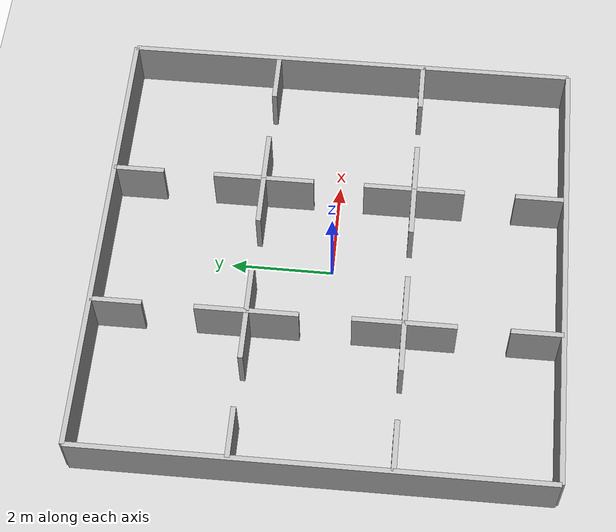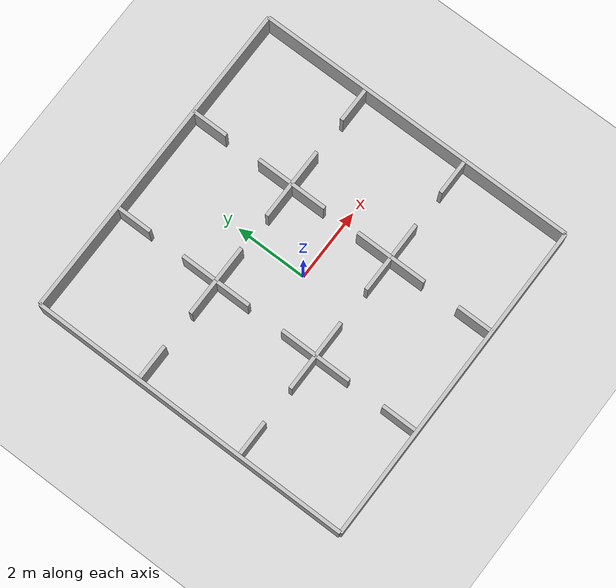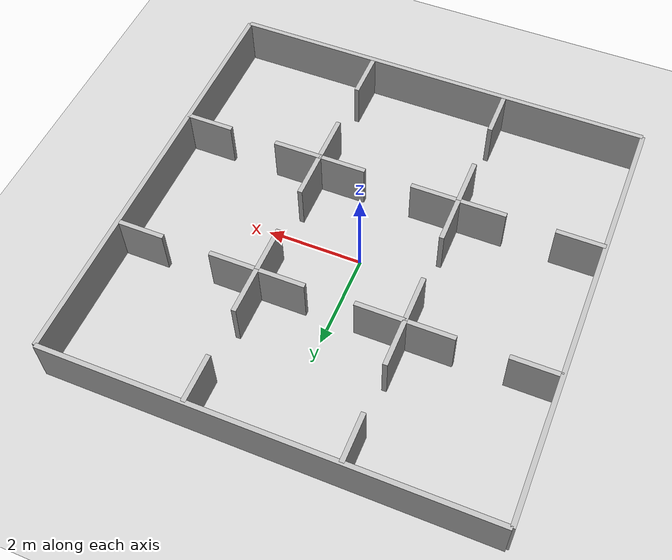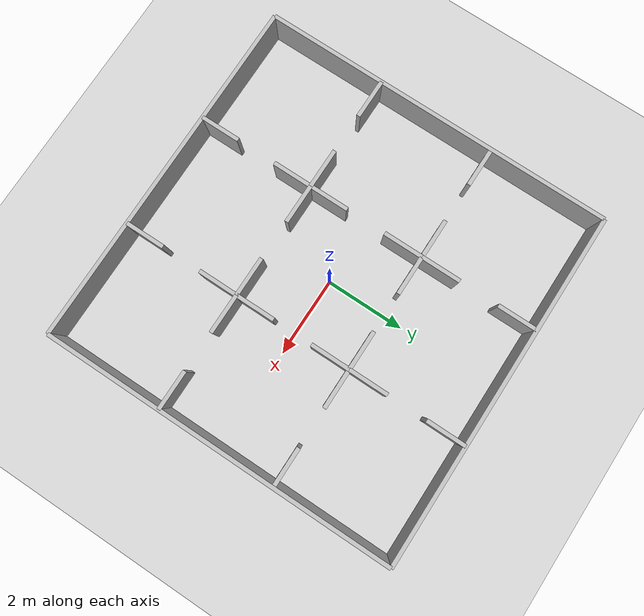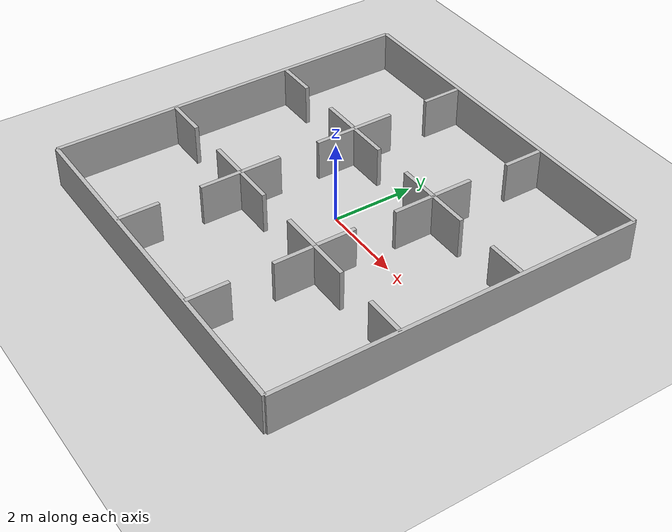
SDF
<?xml version="1.0" ?>
<sdf version="1.6">
  <world name="nine_rooms_world">

    <include><uri>model://sun</uri></include>
    <include><uri>model://ground_plane</uri></include>

    <model name="ext_north">
      <static>true</static><pose>0.0 4.5 0.5 0 0 0</pose>
      <link name="link">
        <collision name="col"><geometry><box><size>9.0 0.1 1.0</size></box></geometry></collision>
        <visual name="vis"><geometry><box><size>9.0 0.1 1.0</size></box></geometry></visual>
      </link>
    </model>
    <model name="ext_south">
      <static>true</static><pose>0.0 -4.5 0.5 0 0 0</pose>
      <link name="link">
        <collision name="col"><geometry><box><size>9.0 0.1 1.0</size></box></geometry></collision>
        <visual name="vis"><geometry><box><size>9.0 0.1 1.0</size></box></geometry></visual>
      </link>
    </model>
    <model name="ext_east">
      <static>true</static><pose>4.5 0.0 0.5 0 0 0</pose>
      <link name="link">
        <collision name="col"><geometry><box><size>0.1 9.0 1.0</size></box></geometry></collision>
        <visual name="vis"><geometry><box><size>0.1 9.0 1.0</size></box></geometry></visual>
      </link>
    </model>
    <model name="ext_west">
      <static>true</static><pose>-4.5 0.0 0.5 0 0 0</pose>
      <link name="link">
        <collision name="col"><geometry><box><size>0.1 9.0 1.0</size></box></geometry></collision>
        <visual name="vis"><geometry><box><size>0.1 9.0 1.0</size></box></geometry></visual>
      </link>
    </model>
    <model name="h_div_1_0_left">
      <static>true</static><pose>-4.0 -1.5 0.5 0 0 0</pose>
      <link name="link">
        <collision name="col"><geometry><box><size>1.0 0.1 1.0</size></box></geometry></collision>
        <visual name="vis"><geometry><box><size>1.0 0.1 1.0</size></box></geometry></visual>
      </link>
    </model>
    <model name="h_div_1_0_right">
      <static>true</static><pose>-2.0 -1.5 0.5 0 0 0</pose>
      <link name="link">
        <collision name="col"><geometry><box><size>1.0 0.1 1.0</size></box></geometry></collision>
        <visual name="vis"><geometry><box><size>1.0 0.1 1.0</size></box></geometry></visual>
      </link>
    </model>
    <model name="h_div_1_1_left">
      <static>true</static><pose>-1.0 -1.5 0.5 0 0 0</pose>
      <link name="link">
        <collision name="col"><geometry><box><size>1.0 0.1 1.0</size></box></geometry></collision>
        <visual name="vis"><geometry><box><size>1.0 0.1 1.0</size></box></geometry></visual>
      </link>
    </model>
    <model name="h_div_1_1_right">
      <static>true</static><pose>1.0 -1.5 0.5 0 0 0</pose>
      <link name="link">
        <collision name="col"><geometry><box><size>1.0 0.1 1.0</size></box></geometry></collision>
        <visual name="vis"><geometry><box><size>1.0 0.1 1.0</size></box></geometry></visual>
      </link>
    </model>
    <model name="h_div_1_2_left">
      <static>true</static><pose>2.0 -1.5 0.5 0 0 0</pose>
      <link name="link">
        <collision name="col"><geometry><box><size>1.0 0.1 1.0</size></box></geometry></collision>
        <visual name="vis"><geometry><box><size>1.0 0.1 1.0</size></box></geometry></visual>
      </link>
    </model>
    <model name="h_div_1_2_right">
      <static>true</static><pose>4.0 -1.5 0.5 0 0 0</pose>
      <link name="link">
        <collision name="col"><geometry><box><size>1.0 0.1 1.0</size></box></geometry></collision>
        <visual name="vis"><geometry><box><size>1.0 0.1 1.0</size></box></geometry></visual>
      </link>
    </model>
    <model name="h_div_2_0_left">
      <static>true</static><pose>-4.0 1.5 0.5 0 0 0</pose>
      <link name="link">
        <collision name="col"><geometry><box><size>1.0 0.1 1.0</size></box></geometry></collision>
        <visual name="vis"><geometry><box><size>1.0 0.1 1.0</size></box></geometry></visual>
      </link>
    </model>
    <model name="h_div_2_0_right">
      <static>true</static><pose>-2.0 1.5 0.5 0 0 0</pose>
      <link name="link">
        <collision name="col"><geometry><box><size>1.0 0.1 1.0</size></box></geometry></collision>
        <visual name="vis"><geometry><box><size>1.0 0.1 1.0</size></box></geometry></visual>
      </link>
    </model>
    <model name="h_div_2_1_left">
      <static>true</static><pose>-1.0 1.5 0.5 0 0 0</pose>
      <link name="link">
        <collision name="col"><geometry><box><size>1.0 0.1 1.0</size></box></geometry></collision>
        <visual name="vis"><geometry><box><size>1.0 0.1 1.0</size></box></geometry></visual>
      </link>
    </model>
    <model name="h_div_2_1_right">
      <static>true</static><pose>1.0 1.5 0.5 0 0 0</pose>
      <link name="link">
        <collision name="col"><geometry><box><size>1.0 0.1 1.0</size></box></geometry></collision>
        <visual name="vis"><geometry><box><size>1.0 0.1 1.0</size></box></geometry></visual>
      </link>
    </model>
    <model name="h_div_2_2_left">
      <static>true</static><pose>2.0 1.5 0.5 0 0 0</pose>
      <link name="link">
        <collision name="col"><geometry><box><size>1.0 0.1 1.0</size></box></geometry></collision>
        <visual name="vis"><geometry><box><size>1.0 0.1 1.0</size></box></geometry></visual>
      </link>
    </model>
    <model name="h_div_2_2_right">
      <static>true</static><pose>4.0 1.5 0.5 0 0 0</pose>
      <link name="link">
        <collision name="col"><geometry><box><size>1.0 0.1 1.0</size></box></geometry></collision>
        <visual name="vis"><geometry><box><size>1.0 0.1 1.0</size></box></geometry></visual>
      </link>
    </model>
    <model name="v_div_1_0_left">
      <static>true</static><pose>-1.5 -4.0 0.5 0 0 0</pose>
      <link name="link">
        <collision name="col"><geometry><box><size>0.1 1.0 1.0</size></box></geometry></collision>
        <visual name="vis"><geometry><box><size>0.1 1.0 1.0</size></box></geometry></visual>
      </link>
    </model>
    <model name="v_div_1_0_right">
      <static>true</static><pose>-1.5 -2.0 0.5 0 0 0</pose>
      <link name="link">
        <collision name="col"><geometry><box><size>0.1 1.0 1.0</size></box></geometry></collision>
        <visual name="vis"><geometry><box><size>0.1 1.0 1.0</size></box></geometry></visual>
      </link>
    </model>
    <model name="v_div_1_1_left">
      <static>true</static><pose>-1.5 -1.0 0.5 0 0 0</pose>
      <link name="link">
        <collision name="col"><geometry><box><size>0.1 1.0 1.0</size></box></geometry></collision>
        <visual name="vis"><geometry><box><size>0.1 1.0 1.0</size></box></geometry></visual>
      </link>
    </model>
    <model name="v_div_1_1_right">
      <static>true</static><pose>-1.5 1.0 0.5 0 0 0</pose>
      <link name="link">
        <collision name="col"><geometry><box><size>0.1 1.0 1.0</size></box></geometry></collision>
        <visual name="vis"><geometry><box><size>0.1 1.0 1.0</size></box></geometry></visual>
      </link>
    </model>
    <model name="v_div_1_2_left">
      <static>true</static><pose>-1.5 2.0 0.5 0 0 0</pose>
      <link name="link">
        <collision name="col"><geometry><box><size>0.1 1.0 1.0</size></box></geometry></collision>
        <visual name="vis"><geometry><box><size>0.1 1.0 1.0</size></box></geometry></visual>
      </link>
    </model>
    <model name="v_div_1_2_right">
      <static>true</static><pose>-1.5 4.0 0.5 0 0 0</pose>
      <link name="link">
        <collision name="col"><geometry><box><size>0.1 1.0 1.0</size></box></geometry></collision>
        <visual name="vis"><geometry><box><size>0.1 1.0 1.0</size></box></geometry></visual>
      </link>
    </model>
    <model name="v_div_2_0_left">
      <static>true</static><pose>1.5 -4.0 0.5 0 0 0</pose>
      <link name="link">
        <collision name="col"><geometry><box><size>0.1 1.0 1.0</size></box></geometry></collision>
        <visual name="vis"><geometry><box><size>0.1 1.0 1.0</size></box></geometry></visual>
      </link>
    </model>
    <model name="v_div_2_0_right">
      <static>true</static><pose>1.5 -2.0 0.5 0 0 0</pose>
      <link name="link">
        <collision name="col"><geometry><box><size>0.1 1.0 1.0</size></box></geometry></collision>
        <visual name="vis"><geometry><box><size>0.1 1.0 1.0</size></box></geometry></visual>
      </link>
    </model>
    <model name="v_div_2_1_left">
      <static>true</static><pose>1.5 -1.0 0.5 0 0 0</pose>
      <link name="link">
        <collision name="col"><geometry><box><size>0.1 1.0 1.0</size></box></geometry></collision>
        <visual name="vis"><geometry><box><size>0.1 1.0 1.0</size></box></geometry></visual>
      </link>
    </model>
    <model name="v_div_2_1_right">
      <static>true</static><pose>1.5 1.0 0.5 0 0 0</pose>
      <link name="link">
        <collision name="col"><geometry><box><size>0.1 1.0 1.0</size></box></geometry></collision>
        <visual name="vis"><geometry><box><size>0.1 1.0 1.0</size></box></geometry></visual>
      </link>
    </model>
    <model name="v_div_2_2_left">
      <static>true</static><pose>1.5 2.0 0.5 0 0 0</pose>
      <link name="link">
        <collision name="col"><geometry><box><size>0.1 1.0 1.0</size></box></geometry></collision>
        <visual name="vis"><geometry><box><size>0.1 1.0 1.0</size></box></geometry></visual>
      </link>
    </model>
    <model name="v_div_2_2_right">
      <static>true</static><pose>1.5 4.0 0.5 0 0 0</pose>
      <link name="link">
        <collision name="col"><geometry><box><size>0.1 1.0 1.0</size></box></geometry></collision>
        <visual name="vis"><geometry><box><size>0.1 1.0 1.0</size></box></geometry></visual>
      </link>
    </model>

  </world>
</sdf>
